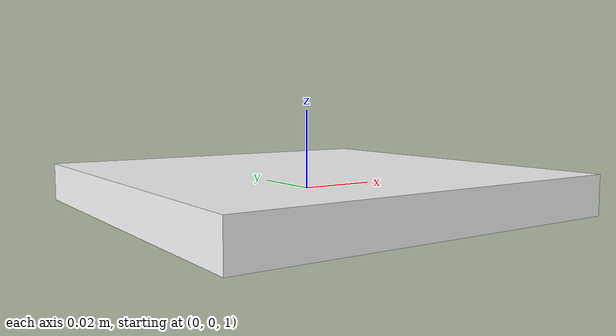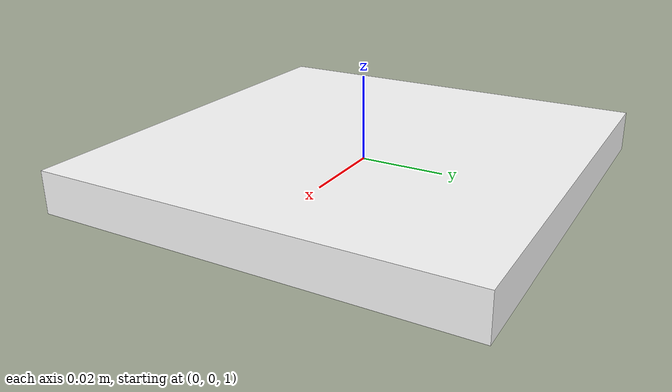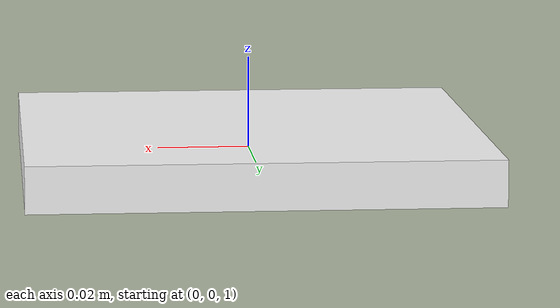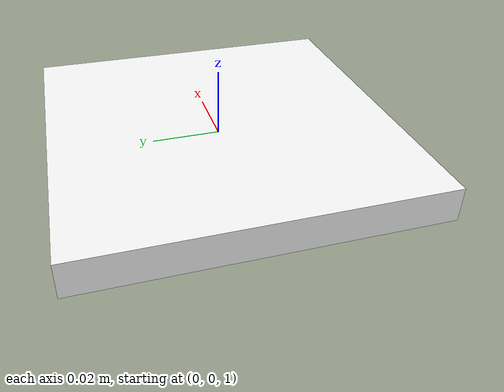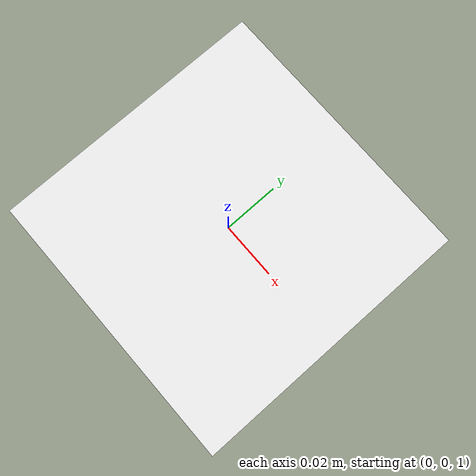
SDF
<?xml version="1.0" encoding="UTF-8"?>
<sdf version='1.9'>
  <model name='aruco_tag'>
    <static>true</static>
    <pose>0 0 1 0 0 0</pose>
    <link name='base'>
      <visual name='base_visual'>
        <geometry>
           <box>
            <size>0.1 0.1 0.01</size>
          </box>
        </geometry>
        <material>
          <diffuse>1 1 1 1</diffuse>
          <specular>0.4 0.4 0.4 1</specular>
          <pbr>
            <metal>
              <albedo_map>aruco-5.png</albedo_map>
            </metal>
          </pbr>
        </material>
      </visual>
    </link>
  </model>
</sdf>
